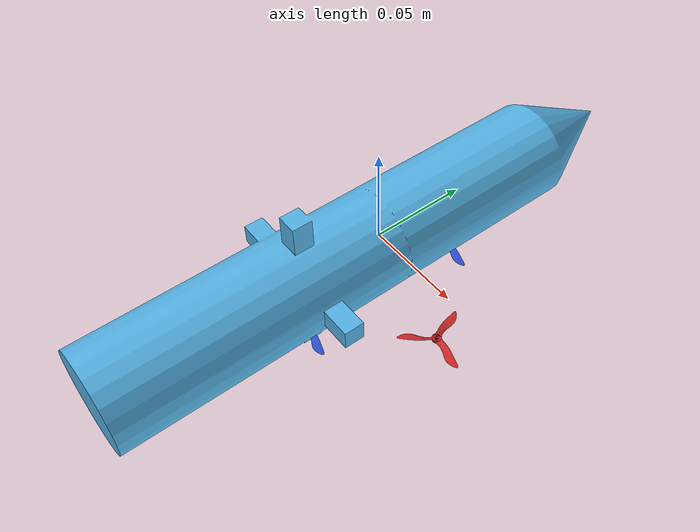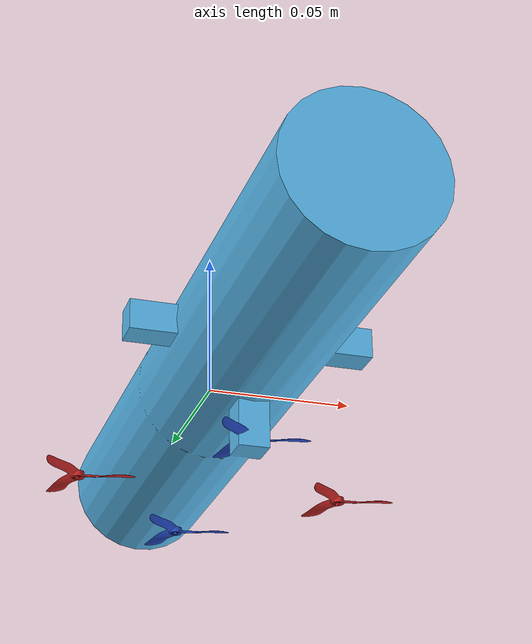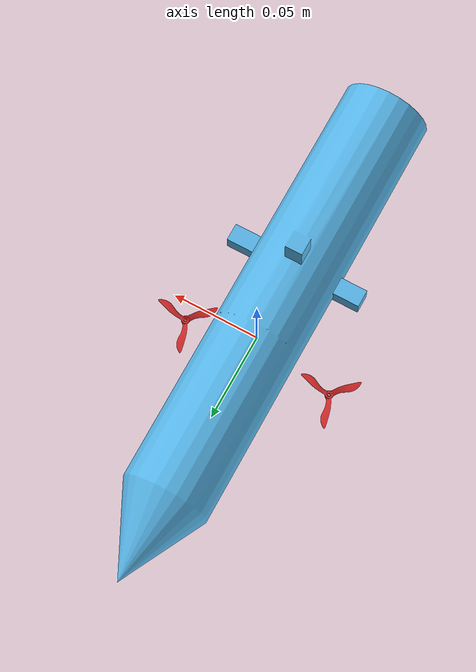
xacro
<?xml version="1.0"?>
<robot name="nezha_rocket" xmlns:xacro="http://www.ros.org/wiki/xacro" >
<xacro:arg name="debug" default="0" />
<xacro:arg name="enable_mavlink_interface" default="true" />
<xacro:arg name="enable_ground_truth" default="true" />
<xacro:arg name="enable_logging" default="false" />
<xacro:arg name="namespace" default="nezha_rocket" />
<xacro:arg name="inertial_reference_frame" default="world"/>
<xacro:property name="inertial_reference_frame" value="$(arg inertial_reference_frame)"/>
<xacro:property name="namespace" value="$(arg namespace)" />
<xacro:property name="enable_mavlink_interface" value="$(arg enable_mavlink_interface)" />
<xacro:property name="rotor_velocity_slowdown_sim" value="10" />
<xacro:property name="use_mesh_file" value="true" />
<xacro:property name="visual_mesh_file" value="$(find nezha_description)/${namespace}/meshes/${namespace}.STL"/>
<xacro:property name="collision_mesh_file" value="$(find nezha_description)/${namespace}/meshes/${namespace}.STL"/>
<xacro:property name="mesh_file" value="$(find nezha_description)/${namespace}/meshes/${namespace}.STL"/>
<xacro:property name="mass" value="1965" /> <!-- [kg] -->
<xacro:property name="body_width" value="0.5" />
<xacro:property name="body_height" value="0.3" />
<xacro:property name="mass_rotor" value="0.00348939525186528" /> <!-- [kg] -->
<xacro:property name="arm_length_front_x" value="0.045" />
<xacro:property name="arm_length_back_x" value="0.045" />
<xacro:property name="arm_length_front_y" value="0.045" />
<xacro:property name="arm_length_back_y" value="0.045" />
<xacro:property name="rotor_r" value="0" />
<xacro:property name="rotor_p" value="0" />
<xacro:property name="rotor_y" value="0" />
<xacro:property name="rotor_offset_top" value="-0.04" />
<xacro:property name="paddle_offset_top" value="-0.05" />
<xacro:property name="blade_type" value="thin" />
<xacro:property name="radius_rotor" value="0.25" />
<xacro:property name="radius_paddle" value="0.5" />
<xacro:property name="scale_rotor" value="0.3" />
<xacro:property name="motor_constant" value="8.54858e-06" /> <!-- [kg.m/s^2] -->
<xacro:property name="moment_constant" value="0.016" />
<xacro:property name="time_constant_up" value="0.0125" />
<xacro:property name="time_constant_down" value="0.025" />
<xacro:property name="max_rot_velocity" value="838" /> <!-- [rad/s] -->
<xacro:property name="sin30" value="0.5" />
<xacro:property name="cos30" value="0.866025403784" />
<xacro:property name="sqrt2" value="1.4142135623730951" />
<xacro:property name="rotor_drag_coefficient" value="8.06428e-05" />
<xacro:property name="rolling_moment_coefficient" value="0.000001" />
<xacro:property name="paddle_arm_length_front_x" value="0.12853" />
<xacro:property name="paddle_arm_length_front_y" value="0.0" />
<xacro:property name="paddle_arm_length_back_x" value="-0.1392" />
<xacro:property name="paddle_1_arm_length_back_y" value="0.04424" />
<xacro:property name="paddle_2_arm_length_back_y" value="-0.04424" />
<xacro:property name="mass_paddle" value="0.003489395251" /> <!-- [kg] -->
<xacro:property name="paddle_number" value="4" />
<xacro:property name="cob" value="0.0 0.0 0.3"/>
<xacro:property name="volume" value="2.83826"/>
<xacro:property name="mass" value="1965"/>
<xacro:property name="length" value="0.30"/>
<xacro:property name="width"  value="0.20"/>
<xacro:property name="height" value="0.15"/>
<xacro:property name="d2r" value="0.01745329"/>
<xacro:property name="body_inertia">
<inertia ixx="0.00169869" ixy="5.67e-7" ixz="0.000268585" iyy="0.004912215" iyz="-5.60e-7" izz="0.005584932" />
</xacro:property>
<xacro:property name="rotor_inertia">
<xacro:box_inertia x="${radius_rotor}" y="0.015" z="0.003" mass="${mass_rotor * rotor_velocity_slowdown_sim}" />
</xacro:property>

<xacro:include filename="$(find nezha_description)/${namespace}/urdf/${namespace}_base.xacro"/>
<xacro:include filename="$(find nezha_description)/${namespace}/urdf/UAV/nezha_UAV.xacro"/>

</robot>

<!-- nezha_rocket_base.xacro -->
<robot name="nezha_rocket" xmlns:xacro="http://www.ros.org/wiki/xacro" >
 <xacro:include filename="$(find nezha_description)/${namespace}/urdf/multirotor_base_nezha.xacro"/>
   <xacro:include filename="$(find nezha_description)/${namespace}/urdf/nezha_plugin.xacro"/>
  <xacro:multirotor_base_macro
    robot_namespace="${namespace}"
    mass="${mass}"
    body_width="${body_width}"
    body_height="${body_height}"
    use_mesh_file="${use_mesh_file}"
    mesh_file="${mesh_file}"
    >
    <xacro:insert_block name="body_inertia" />
  </xacro:multirotor_base_macro>
<xacro:default_joint_state_publisher namespace="${namespace}" update_rate="10"/>

</robot>

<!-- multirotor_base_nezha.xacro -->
<robot xmlns:xacro="http://www.ros.org/wiki/xacro" >
  <!-- Main multirotor link -->
  <xacro:macro name="multirotor_base_macro"
    params="robot_namespace mass body_width body_height use_mesh_file mesh_file *inertia">
    <link name="${robot_namespace}/base_link"></link>

    <joint name="${robot_namespace}/base_joint" type="fixed">
      <origin xyz="0 0 0" rpy="0 0 0" />
      <parent link="${robot_namespace}/base_link" />
      <child link="${robot_namespace}/base_link_inertia" />
    </joint>

    <link name="${robot_namespace}/base_link_inertia">
      <inertial>
        <mass value="${mass}" />  <!-- [kg] -->
        <origin xyz="0 0 0" />
        <xacro:insert_block name="inertia" />
      </inertial>

      <visual>
        <origin xyz="0 0 0" rpy="0 0 0" />
        <geometry>
          <xacro:if value="${use_mesh_file}">
            <mesh filename="${mesh_file}" scale="1 1 1" />
          </xacro:if>
          <xacro:unless value="${use_mesh_file}">
            <box size="${body_width} ${body_width} ${body_height}"/>
          </xacro:unless>
        </geometry>
      </visual>

      <collision>
        <origin xyz="0 0 0" rpy="0 0 0" />
        <geometry>
          <box size="${body_width} ${body_width} ${body_height}" />
        </geometry>
      </collision>
    </link>

    <!-- attach multirotor_base_plugin to the base_link -->
    <gazebo>
      <plugin filename="librotors_gazebo_multirotor_base_plugin.so" name="multirotor_base_plugin">
        <robotNamespace>${robot_namespace}</robotNamespace>
        <linkName>${robot_namespace}/base_link</linkName>
        <rotorVelocitySlowdownSim>${rotor_velocity_slowdown_sim}</rotorVelocitySlowdownSim>
      </plugin>
    </gazebo>
  </xacro:macro>

  <xacro:macro name="nezha_base" params="namespace *gazebo inertial_reference_frame">
    <!-- base_link according to ROS conventions: x forward, z up -->
    <link name="${namespace}/base_link">
      <inertial>
        <mass value="${mass}"/>
        <origin xyz="0 0 0"/>
        <inertia ixx="525.39" ixy="1.44" ixz="33.41" iyy="794.20" iyz="2.6" izz="691.23"/>
      </inertial>
      <visual>
        <origin xyz="0 0 0" rpy="0 0 0"/>
        <geometry>
          <mesh filename="${visual_mesh_file}" scale="1 1 1"/>
        </geometry>
      </visual>
      <!-- bottom plate -->
      <collision>
        <origin xyz="0 0 -0.75" rpy="0 0 0"/>
        <geometry>
          <box size="2.56 1.50 0.10"/>
        </geometry>
      </collision>
      <!-- top plate -->
      <collision>
        <origin xyz="0 0 0.60" rpy="0 0 0"/>
        <geometry><box size="2.56 1.50 0.40"/></geometry>
      </collision>
      <!-- left / right sides -->
      <collision>
        <origin xyz="-0.20 0.70 -0.15" rpy="0 0 0"/>
        <geometry><box size="2.20 0.10 1.10"/></geometry>
      </collision>
      <collision>
        <origin xyz="-0.20 -0.70 -0.15" rpy="0 0 0"/>
        <geometry><box size="2.20 0.10 1.10"/></geometry>
      </collision>
    </link>

      <joint name="${namespace}/base_joint" type="fixed">
	      <origin xyz="-5e-6 4e-6 5e-6" rpy="0 0 0" />
	      <parent link="${namespace}/base_link" />
	      <child link="${namespace}/base_link_inertia" />
      </joint>
      <link name="${namespace}/base_link_inertia">
	      <inertial>
		<mass value="${mass}" />  <!-- [kg] -->
		<origin xyz="0 0 0 " />
		<xacro:insert_block name="body_inertia" />
	      </inertial>
      </link>
    <xacro:insert_block name="gazebo"/>
        <gazebo>
      <plugin filename="librotors_gazebo_multirotor_base_plugin.so" name="multirotor_base_plugin">
        <robotNamespace>${namespace}</robotNamespace>
        <linkName>${namespace}/base_link</linkName>
        <rotorVelocitySlowdownSim>${rotor_velocity_slowdown_sim}</rotorVelocitySlowdownSim>
      </plugin>
    </gazebo>
  </xacro:macro>

    <xacro:macro name="nezha_hydro_model" params="namespace">
        <link name="${namespace}/base_link">
            <neutrally_buoyant>0</neutrally_buoyant>
            <volume>${volume}</volume>
            <box>
                <width>1.5</width>
                <length>2.6</length>
                <height>1.6</height>
            </box>
            <center_of_buoyancy>${cob}</center_of_buoyancy>
            <hydrodynamic_model>
                <type>fossen</type>
                <!-- Added mass: see p.28 in Berg2012 -->
                <added_mass>
                     779.79 -6.8773 -103.32  8.5426 -165.54 -7.8033
                    -6.8773    1222   51.29  409.44 -5.8488  62.726
                    -103.32   51.29  3659.9  6.1112 -386.42  10.774
                     8.5426  409.44  6.1112   534.9 -10.027  21.019
                    -165.54 -5.8488 -386.42 -10.027  842.69 -1.1162
                    -7.8033  62.726  10.775  21.019 -1.1162  224.32
                </added_mass>
                <!-- Linear damping: see p.31 in Berg2012 -->
                <linear_damping>
                    -74.82 -69.48 -728.4 -268.8 -309.77 -105
                </linear_damping>
                <!-- Non-linear damping: see p.30 in Berg2012 -->
                <quadratic_damping>
                    -748.22 -992.53 -1821.01 -672 -774.44 -523.27
                </quadratic_damping>
            </hydrodynamic_model>
        </link>
    </xacro:macro>

<xacro:macro name="paddle"
    params="robot_namespace parent mass_paddle paddle_number color use_own_mesh mesh rotor_constant dyn_time_constant scale *origin *inertia" >
    <joint name="${robot_namespace}/paddle_${paddle_number}_joint" type="continuous">
      <xacro:insert_block name="origin" />
      <axis xyz="1 0 0" />
      <parent link="${parent}" />
      <child link="${robot_namespace}/paddle_${paddle_number}" />
    </joint>
    <link name="${robot_namespace}/paddle_${paddle_number}">
      <inertial>
        <mass value="${mass_paddle}" /> <!-- [kg] -->
        <xacro:insert_block name="inertia" />
      </inertial>
      <visual>
        <geometry>
          <xacro:if value="${use_own_mesh}">
            <mesh filename="${mesh}"
              scale="${scale}" /> <!-- 修改点：使用传入的 scale 参数 -->
          </xacro:if>
          <xacro:unless value="${use_own_mesh}">
            <mesh filename="$(find nezha_description)/${namespace}/meshes/paddle_1_link.STL"
              scale="${radius_paddle} ${radius_paddle} ${radius_paddle}" />
          </xacro:unless>
        </geometry>
      </visual>
      <collision>
        <geometry>
          <cylinder length="0.00005" radius="${radius_paddle}" />
        </geometry>
      </collision>
    </link>
    <gazebo reference="${robot_namespace}/paddle_${paddle_number}">
      <material>Gazebo/${color}</material>
    </gazebo>
    <gazebo>
      <plugin name="${robot_namespace}_${paddle_number}_thruster_model" filename="libuuv_thruster_ros_plugin.so">
        <linkName>${robot_namespace}/paddle_${paddle_number}</linkName>
        <jointName>${robot_namespace}/paddle_${paddle_number}_joint</jointName>
        <thrusterID>${paddle_number}</thrusterID>
        <xacro:rotor_dyn_first_order_macro time_constant="${dyn_time_constant}"/>
        <xacro:thruster_cf_basic_macro rotor_constant="${rotor_constant}"/>
      </plugin>
    </gazebo>
</xacro:macro>

  <!-- Default joint state publisher -->
  <xacro:macro name="default_joint_state_publisher" params="namespace update_rate">
    <gazebo>
      <plugin name="uuv_joint_state_publisher" filename="libuuv_joint_state_publisher.so">
        <robotNamespace>${namespace}</robotNamespace>
        <updateRate>${update_rate}</updateRate>
      </plugin>
    </gazebo>
  </xacro:macro>
</robot>

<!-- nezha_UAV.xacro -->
<robot xmlns:xacro="http://ros.org/wiki/xacro">

<xacro:include filename="$(find nezha_description)/${namespace}/urdf/UAV/component_snippets_UAV.xacro"/>

  <xacro:controller_plugin_macro namespace="${namespace}" imu_sub_topic="imu"/>
  <xacro:default_imu namespace="${namespace}" parent_link="${namespace}/base_link"/>

  <xacro:if value="$(arg enable_mavlink_interface)">
    <xacro:default_mavlink_interface namespace="${namespace}" imu_sub_topic="imu" rotor_count="4"/>
  </xacro:if>

  <xacro:if value="$(arg enable_ground_truth)">
    <xacro:ground_truth_imu_and_odometry namespace="${namespace}" parent_link="${namespace}/base_link"/>
  </xacro:if>
  <xacro:if value="$(arg enable_logging)">
    <xacro:bag_plugin_macro
      namespace="${namespace}"
      bag_file="$(arg log_file)"
      rotor_velocity_slowdown_sim="${rotor_velocity_slowdown_sim}"
      wait_to_record_bag="$(arg wait_to_record_bag)"/>
  </xacro:if>

<xacro:vertical_rotor
  robot_namespace="${namespace}"
  suffix="front_right"
  direction="ccw"
  motor_constant="${motor_constant}"
  moment_constant="${moment_constant}"
  parent="${namespace}/base_link"
  mass_rotor="${mass_rotor}"
  radius_rotor="${radius_rotor}"
  scale_rotor="${scale_rotor}"
  time_constant_up="${time_constant_up}"
  time_constant_down="${time_constant_down}"
  max_rot_velocity="${max_rot_velocity}"
  motor_number="0"
  rotor_drag_coefficient="${rotor_drag_coefficient}"
  rolling_moment_coefficient="${rolling_moment_coefficient}"
  color="Blue"
  use_own_mesh="false"
  blade_type="${blade_type}"
  mesh="">
  <origin xyz="0 -${arm_length_front_y} ${rotor_offset_top}" rpy="${rotor_r} ${rotor_p} ${rotor_y}" />
  <xacro:insert_block name="rotor_inertia" />
</xacro:vertical_rotor>

<xacro:vertical_rotor
  robot_namespace="${namespace}"
  suffix="back_left"
  direction="ccw"
  motor_constant="${motor_constant}"
  moment_constant="${moment_constant}"
  parent="${namespace}/base_link"
  mass_rotor="${mass_rotor}"
  radius_rotor="${radius_rotor}"
  scale_rotor="${scale_rotor}"
  time_constant_up="${time_constant_up}"
  time_constant_down="${time_constant_down}"
  max_rot_velocity="${max_rot_velocity}"
  motor_number="1"
  rotor_drag_coefficient="${rotor_drag_coefficient}"
  rolling_moment_coefficient="${rolling_moment_coefficient}"
  color="Red"
  use_own_mesh="false"
  blade_type="${blade_type}"
  mesh="">
  <origin xyz="-${arm_length_back_x} 0 ${rotor_offset_top}" rpy="${rotor_r} ${rotor_p} ${rotor_y}" />
  <xacro:insert_block name="rotor_inertia" />
</xacro:vertical_rotor>

<xacro:vertical_rotor
  robot_namespace="${namespace}"
  suffix="front_left"
  direction="cw"
  motor_constant="${motor_constant}"
  moment_constant="${moment_constant}"
  parent="${namespace}/base_link"
  mass_rotor="${mass_rotor}"
  radius_rotor="${radius_rotor}"
  scale_rotor="${scale_rotor}"
  time_constant_up="${time_constant_up}"
  time_constant_down="${time_constant_down}"
  max_rot_velocity="${max_rot_velocity}"
  motor_number="2"
  rotor_drag_coefficient="${rotor_drag_coefficient}"
  rolling_moment_coefficient="${rolling_moment_coefficient}"
  color="Blue"
  use_own_mesh="false"
  blade_type="${blade_type}"
  mesh="">
  <origin xyz="0 ${arm_length_front_y} ${rotor_offset_top}" rpy="${rotor_r} ${rotor_p} ${rotor_y}" />
  <xacro:insert_block name="rotor_inertia" />
</xacro:vertical_rotor>

<xacro:vertical_rotor
  robot_namespace="${namespace}"
  suffix="back_right"
  direction="cw"
  motor_constant="${motor_constant}"
  moment_constant="${moment_constant}"
  parent="${namespace}/base_link"
  mass_rotor="${mass_rotor}"
  radius_rotor="${radius_rotor}"
  scale_rotor="${scale_rotor}"
  time_constant_up="${time_constant_up}"
  time_constant_down="${time_constant_down}"
  max_rot_velocity="${max_rot_velocity}"
  motor_number="3"
  rotor_drag_coefficient="${rotor_drag_coefficient}"
  rolling_moment_coefficient="${rolling_moment_coefficient}"
  color="Red"
  use_own_mesh="false"
  blade_type="${blade_type}"
  mesh="">
  <origin xyz="${arm_length_back_x} 0 ${rotor_offset_top}" rpy="${rotor_r} ${rotor_p} ${rotor_y}" />
  <xacro:insert_block name="rotor_inertia" />
</xacro:vertical_rotor>

</robot>
